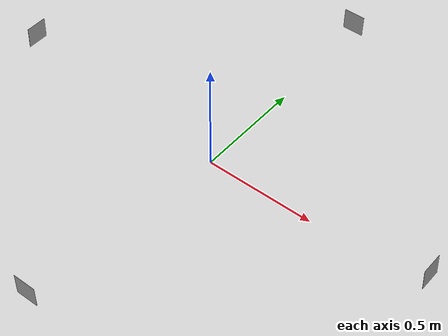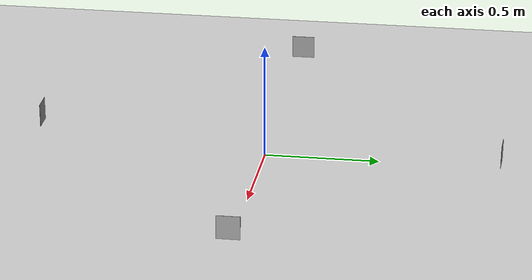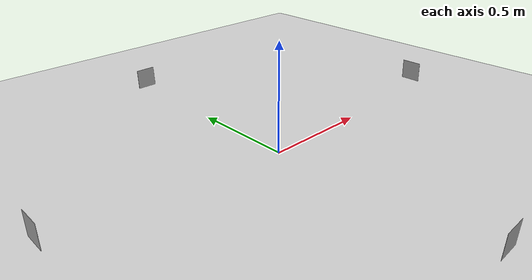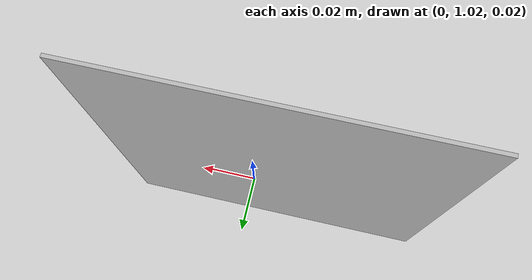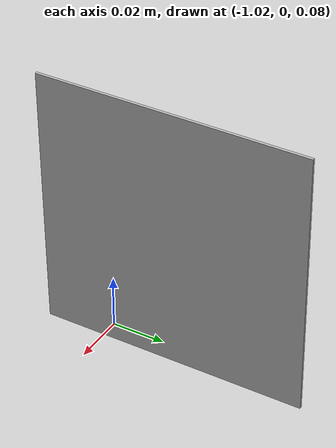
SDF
<sdf version="1.7">
 <world name="default">
  <scene><ambient>0.4 0.4 0.4 1</ambient><background>0.7 0.7 0.7 1</background><shadows>true</shadows></scene>
  <include><uri>model://sun</uri></include>
  <include><uri>model://ground_plane</uri></include>
  <physics type="ode">
   <real_time_update_rate>1000.0</real_time_update_rate>
   <max_step_size>0.001</max_step_size>
   <real_time_factor>1</real_time_factor>
   <ode>
    <solver>
     <type>quick</type>
     <iters>150</iters>
     <precon_iters>0</precon_iters>
     <sor>1.400000</sor>
     <use_dynamic_moi_rescaling>1</use_dynamic_moi_rescaling>
    </solver>
    <constraints>
     <cfm>0.00001</cfm>
     <erp>0.2</erp>
     <contact_max_correcting_vel>2000.000000</contact_max_correcting_vel>
     <contact_surface_layer>0.01000</contact_surface_layer>
    </constraints>
   </ode>
  </physics>
  <model name="Marker-ID-0">
   <static>1</static>
   <link name="link">
    <pose>0 0 0.0005 0 -0 0</pose>
    <collision name="collision"><geometry><box><size>0.1 0.1 0.001</size></box></geometry></collision>
    <visual name="visual">
     <geometry><box><size>0.1 0.1 0.001</size></box></geometry>
     <material>
      <script>
       <name>marker_id_0</name>
       <uri>model://marker_0/materials/scripts/</uri>
       <uri>model://marker_0/materials/textures/</uri>
      </script>
     </material>
    </visual>
   </link>
   <pose>1.03392 0.006516 0.107481 3.14159 -1.53092 3.14159</pose>
  </model>
  <model name="Marker ID-1">
   <static>1</static>
   <link name="link">
    <pose>0 0 0.0005 0 -0 0</pose>
    <collision name="collision"><geometry><box><size>0.1 0.1 0.001</size></box></geometry></collision>
    <visual name="visual">
     <geometry><box><size>0.1 0.1 0.001</size></box></geometry>
     <material>
      <script>
       <name>marker_id_1</name>
       <uri>model://marker_1/materials/scripts/</uri>
       <uri>model://marker_1/materials/textures/</uri>
      </script>
     </material>
    </visual>
   </link>
   <pose>-0.010148 1.031 0.067817 -1.60531 0 0</pose>
  </model>
  <model name="Marker ID-2">
   <static>1</static>
   <link name="link">
    <pose>0 0 0.0005 0 -0 0</pose>
    <collision name="collision"><geometry><box><size>0.1 0.1 0.001</size></box></geometry></collision>
    <visual name="visual">
     <geometry><box><size>0.1 0.1 0.001</size></box></geometry>
     <material>
      <script>
       <name>marker_id_2</name>
       <uri>model://marker_2/materials/scripts/</uri>
       <uri>model://marker_2/materials/textures/</uri>
      </script>
     </material>
    </visual>
   </link>
   <pose>-0.039742 -0.997061 0.127975 -1.54986 0 0</pose>
  </model>
  <model name="Marker ID-3">
   <static>1</static>
   <link name="link">
    <pose>0 0 0.0005 0 -0 0</pose>
    <collision name="collision"><geometry><box><size>0.1 0.1 0.001</size></box></geometry></collision>
    <visual name="visual">
     <geometry><box><size>0.1 0.1 0.001</size></box></geometry>
     <material>
      <script>
       <name>marker_id_3</name>
       <uri>model://marker_3/materials/scripts/</uri>
       <uri>model://marker_3/materials/textures/</uri>
      </script>
     </material>
    </visual>
   </link>
   <pose>-1.01296 0.027563 0.130616 3.14159 1.55836 3.14159</pose>
  </model>
 </world>
</sdf>
